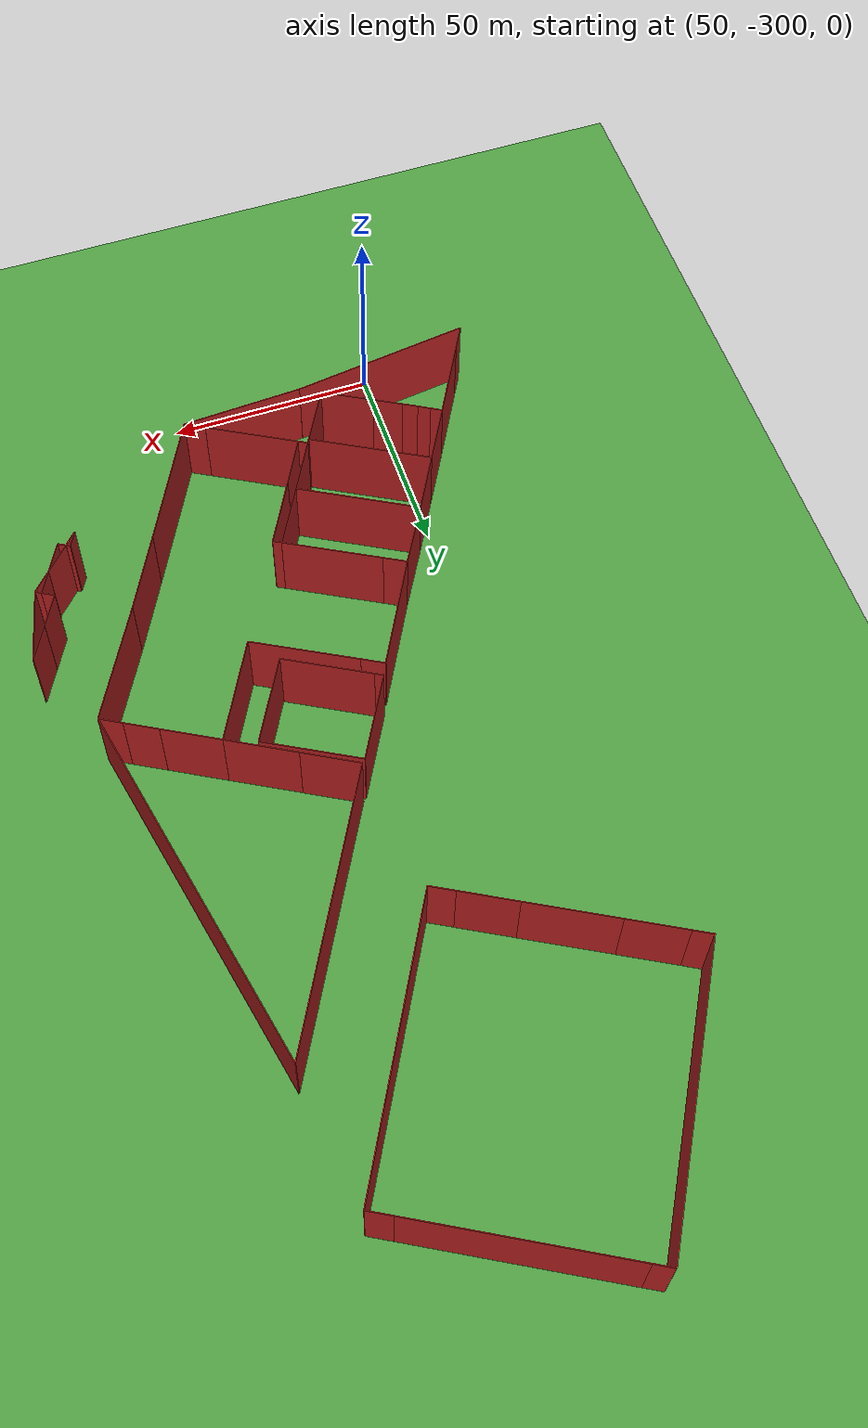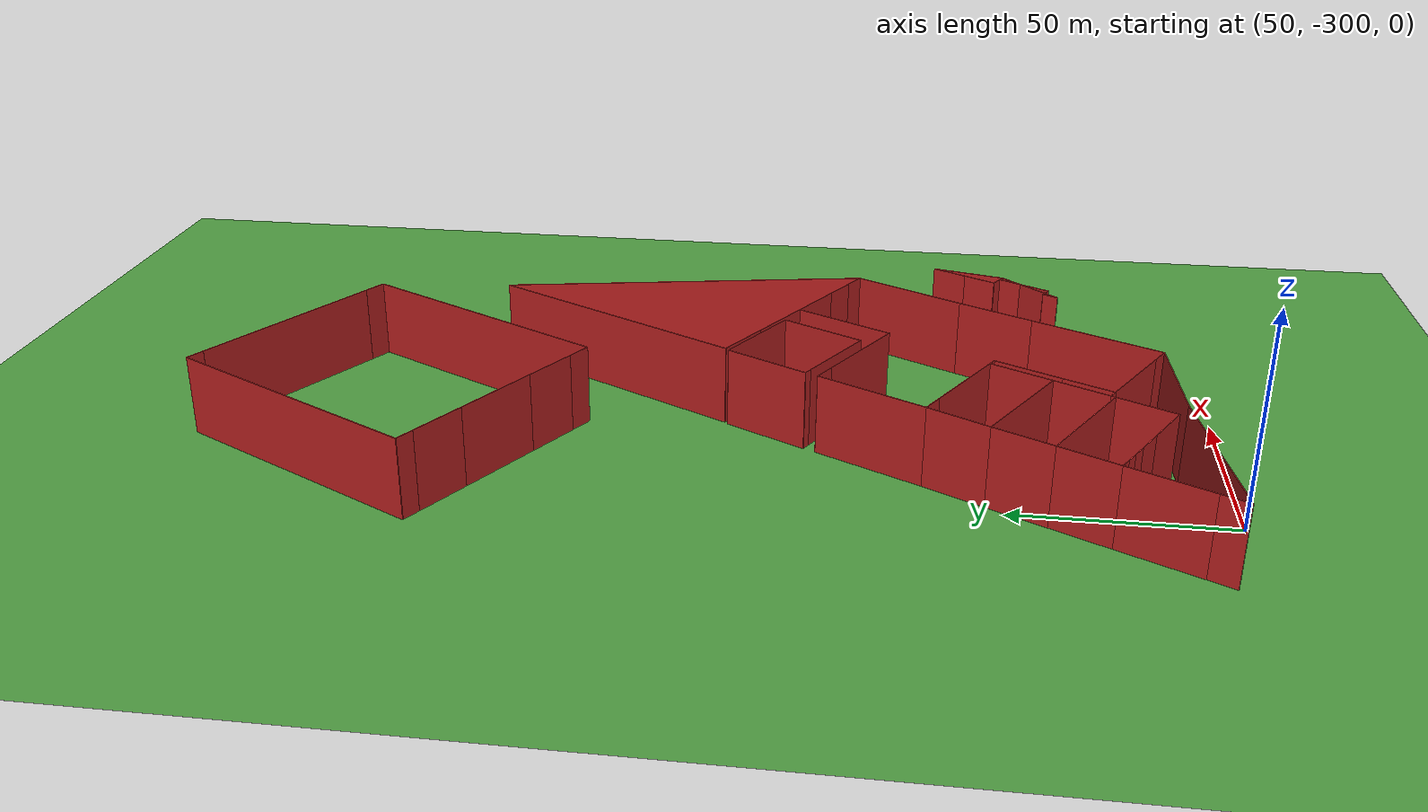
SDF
<sdf version="1.4">
 <world name="default">
  <model name="ground">
   <static>true</static>
   <link name="link">
    <collision name="collision">
     <geometry><plane><size>10000 10000</size><normal>0 0 1</normal></plane></geometry>
     <surface><friction><ode><mu>100</mu><mu2>50</mu2></ode></friction></surface>
    </collision>
    <visual name="visual">
     <pose>0 0 -1 0 0 0</pose>
     <geometry><plane><normal>0 0 1</normal><size>10000 10000</size></plane></geometry>
     <material>
      <script><uri>file://media/materials/scripts/gazebo.material</uri><name>Gazebo/Grass</name></script>
     </material>
    </visual>
   </link>
  </model>
  <include><uri>model://sun</uri></include>
  <model name="office_building_266170738">
   <static>true</static>
   <pose>66.4010743435 -264.246206797 0.0 0 0 0</pose>
   <link name="office_building_266170738_0">
    <collision name="office_building_266170738_0">
     <geometry><box><size>30.0400742676 0.2 20.0</size></box></geometry>
    </collision>
    <visual name="office_building_266170738_0">
     <geometry><box><size>30.0400742676 0.2 20.0</size></box></geometry>
     <material>
      <script><uri>file://media/materials/scripts/gazebo.material</uri><name>Gazebo/Red</name></script>
     </material>
    </visual>
    <pose>-6.89030761443 -2.08200783372 9.0 0 0 -0.50446187228</pose>
   </link>
   <link name="office_building_266170738_1">
    <collision name="office_building_266170738_1">
     <geometry><box><size>14.9034670989 0.2 20.0</size></box></geometry>
    </collision>
    <visual name="office_building_266170738_1">
     <geometry><box><size>14.9034670989 0.2 20.0</size></box></geometry>
     <material>
      <script><uri>file://media/materials/scripts/gazebo.material</uri><name>Gazebo/Red</name></script>
     </material>
    </visual>
    <pose>-16.4146371384 11.6884564895 9.0 0 0 -2.07879318795</pose>
   </link>
   <link name="office_building_266170738_2">
    <collision name="office_building_266170738_2">
     <geometry><box><size>30.0441394522 0.2 20.0</size></box></geometry>
    </collision>
    <visual name="office_building_266170738_2">
     <geometry><box><size>30.0441394522 0.2 20.0</size></box></geometry>
     <material>
      <script><uri>file://media/materials/scripts/gazebo.material</uri><name>Gazebo/Red</name></script>
     </material>
    </visual>
    <pose>0.359144037494 10.9352317337 9.0 0 0 2.63688402281</pose>
   </link>
   <link name="office_building_266170738_3">
    <collision name="office_building_266170738_3">
     <geometry><box><size>13.7774020259 0.2 20.0</size></box></geometry>
    </collision>
    <visual name="office_building_266170738_3">
     <geometry><box><size>13.7774020259 0.2 20.0</size></box></geometry>
     <material>
      <script><uri>file://media/materials/scripts/gazebo.material</uri><name>Gazebo/Red</name></script>
     </material>
    </visual>
    <pose>10.1558830823 -2.34671775955 9.0 0 0 1.06255809713</pose>
   </link>
   <link name="office_building_266170738_4">
    <collision name="office_building_266170738_4">
     <geometry><box><size>1.11866650273 0.2 20.0</size></box></geometry>
    </collision>
    <visual name="office_building_266170738_4">
     <geometry><box><size>1.11866650273 0.2 20.0</size></box></geometry>
     <material>
      <script><uri>file://media/materials/scripts/gazebo.material</uri><name>Gazebo/Red</name></script>
     </material>
    </visual>
    <pose>6.53116357694 -8.85322389999 9.0 0 0 1.06211559722</pose>
   </link>
  </model>
  <model name="office_building_266170551">
   <static>true</static>
   <pose>67.1027754447 -244.520684622 0.0 0 0 0</pose>
   <link name="office_building_266170551_0">
    <collision name="office_building_266170551_0">
     <geometry><box><size>15.6832904899 0.2 20.0</size></box></geometry>
    </collision>
    <visual name="office_building_266170551_0">
     <geometry><box><size>15.6832904899 0.2 20.0</size></box></geometry>
     <material>
      <script><uri>file://media/materials/scripts/gazebo.material</uri><name>Gazebo/Red</name></script>
     </material>
    </visual>
    <pose>-9.56664492653 5.26234065938 9.0 0 0 -2.09500461992</pose>
   </link>
   <link name="office_building_266170551_1">
    <collision name="office_building_266170551_1">
     <geometry><box><size>5.67026094312 0.2 20.0</size></box></geometry>
    </collision>
    <visual name="office_building_266170551_1">
     <geometry><box><size>5.67026094312 0.2 20.0</size></box></geometry>
     <material>
      <script><uri>file://media/materials/scripts/gazebo.material</uri><name>Gazebo/Red</name></script>
     </material>
    </visual>
    <pose>-3.15643398435 10.6866461992 9.0 0 0 2.63952826497</pose>
   </link>
   <link name="office_building_266170551_2">
    <collision name="office_building_266170551_2">
     <geometry><box><size>24.1262364347 0.2 20.0</size></box></geometry>
    </collision>
    <visual name="office_building_266170551_2">
     <geometry><box><size>24.1262364347 0.2 20.0</size></box></geometry>
     <material>
      <script><uri>file://media/materials/scripts/gazebo.material</uri><name>Gazebo/Red</name></script>
     </material>
    </visual>
    <pose>9.90920199022 3.5279497821 9.0 0 0 2.64055687061</pose>
   </link>
   <link name="office_building_266170551_3">
    <collision name="office_building_266170551_3">
     <geometry><box><size>15.7840206942 0.2 20.0</size></box></geometry>
    </collision>
    <visual name="office_building_266170551_3">
     <geometry><box><size>15.7840206942 0.2 20.0</size></box></geometry>
     <material>
      <script><uri>file://media/materials/scripts/gazebo.material</uri><name>Gazebo/Red</name></script>
     </material>
    </visual>
    <pose>16.6480400773 -9.16031394045 9.0 0 0 1.06241467798</pose>
   </link>
   <link name="office_building_266170551_4">
    <collision name="office_building_266170551_4">
     <geometry><box><size>30.0441394522 0.2 20.0</size></box></geometry>
    </collision>
    <visual name="office_building_266170551_4">
     <geometry><box><size>30.0441394522 0.2 20.0</size></box></geometry>
     <material>
      <script><uri>file://media/materials/scripts/gazebo.material</uri><name>Gazebo/Red</name></script>
     </material>
    </visual>
    <pose>-0.342557063685 -8.79029044149 9.0 0 0 -0.504708630776</pose>
   </link>
  </model>
  <model name="office_building_266170657">
   <static>true</static>
   <pose>50.92613358 -272.684727492 0.0 0 0 0</pose>
   <link name="office_building_266170657_0">
    <collision name="office_building_266170657_0">
     <geometry><box><size>30.0400742676 0.2 20.0</size></box></geometry>
    </collision>
    <visual name="office_building_266170657_0">
     <geometry><box><size>30.0400742676 0.2 20.0</size></box></geometry>
     <material>
      <script><uri>file://media/materials/scripts/gazebo.material</uri><name>Gazebo/Red</name></script>
     </material>
    </visual>
    <pose>8.58463314908 6.35651286121 9.0 0 0 2.63713078131</pose>
   </link>
   <link name="office_building_266170657_1">
    <collision name="office_building_266170657_1">
     <geometry><box><size>14.5461650015 0.2 20.0</size></box></geometry>
    </collision>
    <visual name="office_building_266170657_1">
     <geometry><box><size>14.5461650015 0.2 20.0</size></box></geometry>
     <material>
      <script><uri>file://media/materials/scripts/gazebo.material</uri><name>Gazebo/Red</name></script>
     </material>
    </visual>
    <pose>18.1812572693 -7.24970655334 9.0 0 0 1.06049946937</pose>
   </link>
   <link name="office_building_266170657_2">
    <collision name="office_building_266170657_2">
     <geometry><box><size>13.0219665817 0.2 20.0</size></box></geometry>
    </collision>
    <visual name="office_building_266170657_2">
     <geometry><box><size>13.0219665817 0.2 20.0</size></box></geometry>
     <material>
      <script><uri>file://media/materials/scripts/gazebo.material</uri><name>Gazebo/Red</name></script>
     </material>
    </visual>
    <pose>8.91884037357 -10.4674510284 9.0 0 0 -0.501262680575</pose>
   </link>
   <link name="office_building_266170657_3">
    <collision name="office_building_266170657_3">
     <geometry><box><size>7.18447112879 0.2 20.0</size></box></geometry>
    </collision>
    <visual name="office_building_266170657_3">
     <geometry><box><size>7.18447112879 0.2 20.0</size></box></geometry>
     <material>
      <script><uri>file://media/materials/scripts/gazebo.material</uri><name>Gazebo/Red</name></script>
     </material>
    </visual>
    <pose>0.0564200070253 -5.61642014537 9.0 0 0 -0.500024542551</pose>
   </link>
   <link name="office_building_266170657_4">
    <collision name="office_building_266170657_4">
     <geometry><box><size>3.84355332419 0.2 20.0</size></box></geometry>
    </collision>
    <visual name="office_building_266170657_4">
     <geometry><box><size>3.84355332419 0.2 20.0</size></box></geometry>
     <material>
      <script><uri>file://media/materials/scripts/gazebo.material</uri><name>Gazebo/Red</name></script>
     </material>
    </visual>
    <pose>-4.77509926966 -2.9592954851 9.0 0 0 -0.508015779235</pose>
   </link>
   <link name="office_building_266170657_5">
    <collision name="office_building_266170657_5">
     <geometry><box><size>3.18955566037 0.2 20.0</size></box></geometry>
    </collision>
    <visual name="office_building_266170657_5">
     <geometry><box><size>3.18955566037 0.2 20.0</size></box></geometry>
     <material>
      <script><uri>file://media/materials/scripts/gazebo.material</uri><name>Gazebo/Red</name></script>
     </material>
    </visual>
    <pose>-7.83858370252 -1.23279115404 9.0 0 0 -0.519460394717</pose>
   </link>
   <link name="office_building_266170657_6">
    <collision name="office_building_266170657_6">
     <geometry><box><size>2.82183385922 0.2 20.0</size></box></geometry>
    </collision>
    <visual name="office_building_266170657_6">
     <geometry><box><size>2.82183385922 0.2 20.0</size></box></geometry>
     <material>
      <script><uri>file://media/materials/scripts/gazebo.material</uri><name>Gazebo/Red</name></script>
     </material>
    </visual>
    <pose>-10.4461599922 0.262111773582 9.0 0 0 -0.5217811948</pose>
   </link>
   <link name="office_building_266170657_7">
    <collision name="office_building_266170657_7">
     <geometry><box><size>14.5094722559 0.2 20.0</size></box></geometry>
    </collision>
    <visual name="office_building_266170657_7">
     <geometry><box><size>14.5094722559 0.2 20.0</size></box></geometry>
     <material>
      <script><uri>file://media/materials/scripts/gazebo.material</uri><name>Gazebo/Red</name></script>
     </material>
    </visual>
    <pose>-8.11687931307 7.29079597405 9.0 0 0 -2.08251137731</pose>
   </link>
  </model>
  <model name="Paley Center for Media">
   <static>true</static>
   <pose>146.025192979 -243.515815815 0.0 0 0 0</pose>
   <link name="Paley Center for Media_0">
    <collision name="Paley Center for Media_0">
     <geometry><box><size>18.3148447589 0.2 20.0</size></box></geometry>
    </collision>
    <visual name="Paley Center for Media_0">
     <geometry><box><size>18.3148447589 0.2 20.0</size></box></geometry>
     <material>
      <script><uri>file://media/materials/scripts/gazebo.material</uri><name>Gazebo/Red</name></script>
     </material>
    </visual>
    <pose>1.64009938723 0.828257748382 9.0 0 0 1.31361485393</pose>
   </link>
   <link name="Paley Center for Media_1">
    <collision name="Paley Center for Media_1">
     <geometry><box><size>1.493142071 0.2 20.0</size></box></geometry>
    </collision>
    <visual name="Paley Center for Media_1">
     <geometry><box><size>1.493142071 0.2 20.0</size></box></geometry>
     <material>
      <script><uri>file://media/materials/scripts/gazebo.material</uri><name>Gazebo/Red</name></script>
     </material>
    </visual>
    <pose>-1.33964631139 -7.66163075644 9.0 0 0 -0.512909089973</pose>
   </link>
   <link name="Paley Center for Media_2">
    <collision name="Paley Center for Media_2">
     <geometry><box><size>3.14388824643 0.2 20.0</size></box></geometry>
    </collision>
    <visual name="Paley Center for Media_2">
     <geometry><box><size>3.14388824643 0.2 20.0</size></box></geometry>
     <material>
      <script><uri>file://media/materials/scripts/gazebo.material</uri><name>Gazebo/Red</name></script>
     </material>
    </visual>
    <pose>-3.35787289206 -6.52046179748 9.0 0 0 -0.51542312408</pose>
   </link>
   <link name="Paley Center for Media_3">
    <collision name="Paley Center for Media_3">
     <geometry><box><size>8.5444416724 0.2 20.0</size></box></geometry>
    </collision>
    <visual name="Paley Center for Media_3">
     <geometry><box><size>8.5444416724 0.2 20.0</size></box></geometry>
     <material>
      <script><uri>file://media/materials/scripts/gazebo.material</uri><name>Gazebo/Red</name></script>
     </material>
    </visual>
    <pose>-2.6296960032 -2.02286840808 9.0 0 0 -2.08356084788</pose>
   </link>
   <link name="Paley Center for Media_4">
    <collision name="Paley Center for Media_4">
     <geometry><box><size>9.16689312553 0.2 20.0</size></box></geometry>
    </collision>
    <visual name="Paley Center for Media_4">
     <geometry><box><size>9.16689312553 0.2 20.0</size></box></geometry>
     <material>
      <script><uri>file://media/materials/scripts/gazebo.material</uri><name>Gazebo/Red</name></script>
     </material>
    </visual>
    <pose>1.71777350483 5.69220404909 9.0 0 0 -2.08430824888</pose>
   </link>
  </model>
  <model name="office_building_162755456">
   <static>true</static>
   <pose>139.648622161 -257.085949357 0.0 0 0 0</pose>
   <link name="office_building_162755456_0">
    <collision name="office_building_162755456_0">
     <geometry><box><size>13.8887949601 0.2 20.0</size></box></geometry>
    </collision>
    <visual name="office_building_162755456_0">
     <geometry><box><size>13.8887949601 0.2 20.0</size></box></geometry>
     <material>
      <script><uri>file://media/materials/scripts/gazebo.material</uri><name>Gazebo/Red</name></script>
     </material>
    </visual>
    <pose>0.995187075462 0.214807525104 9.0 0 0 1.06060857953</pose>
   </link>
   <link name="office_building_162755456_1">
    <collision name="office_building_162755456_1">
     <geometry><box><size>3.04301989531 0.2 20.0</size></box></geometry>
    </collision>
    <visual name="office_building_162755456_1">
     <geometry><box><size>3.04301989531 0.2 20.0</size></box></geometry>
     <material>
      <script><uri>file://media/materials/scripts/gazebo.material</uri><name>Gazebo/Red</name></script>
     </material>
    </visual>
    <pose>-3.72485324869 -5.10411445699 9.0 0 0 -0.508765121501</pose>
   </link>
   <link name="office_building_162755456_2">
    <collision name="office_building_162755456_2">
     <geometry><box><size>4.02795398232 0.2 20.0</size></box></geometry>
    </collision>
    <visual name="office_building_162755456_2">
     <geometry><box><size>4.02795398232 0.2 20.0</size></box></geometry>
     <material>
      <script><uri>file://media/materials/scripts/gazebo.material</uri><name>Gazebo/Red</name></script>
     </material>
    </visual>
    <pose>-6.03211158247 -6.12331031029 9.0 0 0 1.0634825448</pose>
   </link>
   <link name="office_building_162755456_3">
    <collision name="office_building_162755456_3">
     <geometry><box><size>18.4794647464 0.2 20.0</size></box></geometry>
    </collision>
    <visual name="office_building_162755456_3">
     <geometry><box><size>18.4794647464 0.2 20.0</size></box></geometry>
     <material>
      <script><uri>file://media/materials/scripts/gazebo.material</uri><name>Gazebo/Red</name></script>
     </material>
    </visual>
    <pose>-0.661568487051 -1.17074123951 9.0 0 0 -2.32834236971</pose>
   </link>
   <link name="office_building_162755456_4">
    <collision name="office_building_162755456_4">
     <geometry><box><size>1.493142071 0.2 20.0</size></box></geometry>
    </collision>
    <visual name="office_building_162755456_4">
     <geometry><box><size>1.493142071 0.2 20.0</size></box></geometry>
     <material>
      <script><uri>file://media/materials/scripts/gazebo.material</uri><name>Gazebo/Red</name></script>
     </material>
    </visual>
    <pose>5.036924507 5.90850278518 9.0 0 0 -0.512909089973</pose>
   </link>
  </model>
  <model name="Radio City Music Hall">
   <static>true</static>
   <pose>66.8654919596 -114.337805994 0.0 0 0 0</pose>
   <link name="Radio City Music Hall_0">
    <collision name="Radio City Music Hall_0">
     <geometry><box><size>70.4279726523 0.2 20.0</size></box></geometry>
    </collision>
    <visual name="Radio City Music Hall_0">
     <geometry><box><size>70.4279726523 0.2 20.0</size></box></geometry>
     <material>
      <script><uri>file://media/materials/scripts/gazebo.material</uri><name>Gazebo/Red</name></script>
     </material>
    </visual>
    <pose>-19.2956568865 21.6352152445 9.0 0 0 -2.07753266714</pose>
   </link>
   <link name="Radio City Music Hall_1">
    <collision name="Radio City Music Hall_1">
     <geometry><box><size>4.61645518628 0.2 20.0</size></box></geometry>
    </collision>
    <visual name="Radio City Music Hall_1">
     <geometry><box><size>4.61645518628 0.2 20.0</size></box></geometry>
     <material>
      <script><uri>file://media/materials/scripts/gazebo.material</uri><name>Gazebo/Red</name></script>
     </material>
    </visual>
    <pose>-0.187185336111 51.303793419 9.0 0 0 2.63488995103</pose>
   </link>
   <link name="Radio City Music Hall_2">
    <collision name="Radio City Music Hall_2">
     <geometry><box><size>50.4464401351 0.2 20.0</size></box></geometry>
    </collision>
    <visual name="Radio City Music Hall_2">
     <geometry><box><size>50.4464401351 0.2 20.0</size></box></geometry>
     <material>
      <script><uri>file://media/materials/scripts/gazebo.material</uri><name>Gazebo/Red</name></script>
     </material>
    </visual>
    <pose>23.886652316 37.9459885908 9.0 0 0 2.63503147942</pose>
   </link>
   <link name="Radio City Music Hall_3">
    <collision name="Radio City Music Hall_3">
     <geometry><box><size>5.91467925501 0.2 20.0</size></box></geometry>
    </collision>
    <visual name="Radio City Music Hall_3">
     <geometry><box><size>5.91467925501 0.2 20.0</size></box></geometry>
     <material>
      <script><uri>file://media/materials/scripts/gazebo.material</uri><name>Gazebo/Red</name></script>
     </material>
    </visual>
    <pose>48.5275920394 24.2723636546 9.0 0 0 2.63457742252</pose>
   </link>
   <link name="Radio City Music Hall_4">
    <collision name="Radio City Music Hall_4">
     <geometry><box><size>70.2444945641 0.2 20.0</size></box></geometry>
    </collision>
    <visual name="Radio City Music Hall_4">
     <geometry><box><size>70.2444945641 0.2 20.0</size></box></geometry>
     <material>
      <script><uri>file://media/materials/scripts/gazebo.material</uri><name>Gazebo/Red</name></script>
     </material>
    </visual>
    <pose>34.0672170639 -7.87221782759 9.0 0 0 1.0640624675</pose>
   </link>
   <link name="Radio City Music Hall_5">
    <collision name="Radio City Music Hall_5">
     <geometry><box><size>6.21909529223 0.2 20.0</size></box></geometry>
    </collision>
    <visual name="Radio City Music Hall_5">
     <geometry><box><size>6.21909529223 0.2 20.0</size></box></geometry>
     <material>
      <script><uri>file://media/materials/scripts/gazebo.material</uri><name>Gazebo/Red</name></script>
     </material>
    </visual>
    <pose>14.2972361308 -37.0816567088 9.0 0 0 -0.503062513433</pose>
   </link>
   <link name="Radio City Music Hall_6">
    <collision name="Radio City Music Hall_6">
     <geometry><box><size>13.8801247236 0.2 20.0</size></box></geometry>
    </collision>
    <visual name="Radio City Music Hall_6">
     <geometry><box><size>13.8801247236 0.2 20.0</size></box></geometry>
     <material>
      <script><uri>file://media/materials/scripts/gazebo.material</uri><name>Gazebo/Red</name></script>
     </material>
    </visual>
    <pose>5.49606050344 -32.2304767727 9.0 0 0 -0.504074835531</pose>
   </link>
   <link name="Radio City Music Hall_7">
    <collision name="Radio City Music Hall_7">
     <geometry><box><size>21.8318023266 0.2 20.0</size></box></geometry>
    </collision>
    <visual name="Radio City Music Hall_7">
     <geometry><box><size>21.8318023266 0.2 20.0</size></box></geometry>
     <material>
      <script><uri>file://media/materials/scripts/gazebo.material</uri><name>Gazebo/Red</name></script>
     </material>
    </visual>
    <pose>-10.1436706467 -23.6145506105 9.0 0 0 -0.503189892284</pose>
   </link>
   <link name="Radio City Music Hall_8">
    <collision name="Radio City Music Hall_8">
     <geometry><box><size>14.2852710823 0.2 20.0</size></box></geometry>
    </collision>
    <visual name="Radio City Music Hall_8">
     <geometry><box><size>14.2852710823 0.2 20.0</size></box></geometry>
     <material>
      <script><uri>file://media/materials/scripts/gazebo.material</uri><name>Gazebo/Red</name></script>
     </material>
    </visual>
    <pose>-25.9613075139 -14.9017399222 9.0 0 0 -0.503921694223</pose>
   </link>
   <link name="Radio City Music Hall_9">
    <collision name="Radio City Music Hall_9">
     <geometry><box><size>4.76175828055 0.2 20.0</size></box></geometry>
    </collision>
    <visual name="Radio City Music Hall_9">
     <geometry><box><size>4.76175828055 0.2 20.0</size></box></geometry>
     <material>
      <script><uri>file://media/materials/scripts/gazebo.material</uri><name>Gazebo/Red</name></script>
     </material>
    </visual>
    <pose>-34.3010067045 -10.3031804415 9.0 0 0 -0.50392279344</pose>
   </link>
  </model>
  <model name="office_building_266170649">
   <static>true</static>
   <pose>87.1054794526 -202.761375484 0.0 0 0 0</pose>
   <link name="office_building_266170649_0">
    <collision name="office_building_266170649_0">
     <geometry><box><size>21.7234035409 0.2 20.0</size></box></geometry>
    </collision>
    <visual name="office_building_266170649_0">
     <geometry><box><size>21.7234035409 0.2 20.0</size></box></geometry>
     <material>
      <script><uri>file://media/materials/scripts/gazebo.material</uri><name>Gazebo/Red</name></script>
     </material>
    </visual>
    <pose>-5.49136908766 7.17018663954 9.0 0 0 -2.07917587891</pose>
   </link>
   <link name="office_building_266170649_1">
    <collision name="office_building_266170649_1">
     <geometry><box><size>23.8582984707 0.2 20.0</size></box></geometry>
    </collision>
    <visual name="office_building_266170649_1">
     <geometry><box><size>23.8582984707 0.2 20.0</size></box></geometry>
     <material>
      <script><uri>file://media/materials/scripts/gazebo.material</uri><name>Gazebo/Red</name></script>
     </material>
    </visual>
    <pose>10.237051981 10.8891374597 9.0 0 0 2.63681213482</pose>
   </link>
   <link name="office_building_266170649_2">
    <collision name="office_building_266170649_2">
     <geometry><box><size>21.7233567113 0.2 20.0</size></box></geometry>
    </collision>
    <visual name="office_building_266170649_2">
     <geometry><box><size>21.7233567113 0.2 20.0</size></box></geometry>
     <material>
      <script><uri>file://media/materials/scripts/gazebo.material</uri><name>Gazebo/Red</name></script>
     </material>
    </visual>
    <pose>15.3913524779 -4.36803403835 9.0 0 0 1.06241713444</pose>
   </link>
   <link name="office_building_266170649_3">
    <collision name="office_building_266170649_3">
     <geometry><box><size>21.8521203959 0.2 20.0</size></box></geometry>
    </collision>
    <visual name="office_building_266170649_3">
     <geometry><box><size>21.8521203959 0.2 20.0</size></box></geometry>
     <material>
      <script><uri>file://media/materials/scripts/gazebo.material</uri><name>Gazebo/Red</name></script>
     </material>
    </visual>
    <pose>0.541384798005 -8.57125366436 9.0 0 0 -0.504866462576</pose>
   </link>
   <link name="office_building_266170649_4">
    <collision name="office_building_266170649_4">
     <geometry><box><size>2.00618706267 0.2 20.0</size></box></geometry>
    </collision>
    <visual name="office_building_266170649_4">
     <geometry><box><size>2.00618706267 0.2 20.0</size></box></geometry>
     <material>
      <script><uri>file://media/materials/scripts/gazebo.material</uri><name>Gazebo/Red</name></script>
     </material>
    </visual>
    <pose>-9.89998339021 -2.80215260119 9.0 0 0 -0.503821058987</pose>
   </link>
  </model>
  <model name="650 Fifth Avenue">
   <static>true</static>
   <pose>70.2919577729 -288.866446271 0.0 0 0 0</pose>
  </model>
  <model name="640 5th Avenue">
   <static>true</static>
   <pose>60.4027258762 -281.079379291 0.0 0 0 0</pose>
   <link name="640 5th Avenue_0">
    <collision name="640 5th Avenue_0">
     <geometry><box><size>44.191343842 0.2 20.0</size></box></geometry>
    </collision>
    <visual name="640 5th Avenue_0">
     <geometry><box><size>44.191343842 0.2 20.0</size></box></geometry>
     <material>
      <script><uri>file://media/materials/scripts/gazebo.material</uri><name>Gazebo/Red</name></script>
     </material>
    </visual>
    <pose>-12.0104930181 -10.7231811301 9.0 0 0 0.133276070222</pose>
   </link>
   <link name="640 5th Avenue_1">
    <collision name="640 5th Avenue_1">
     <geometry><box><size>6.52353049168 0.2 20.0</size></box></geometry>
    </collision>
    <visual name="640 5th Avenue_1">
     <geometry><box><size>6.52353049168 0.2 20.0</size></box></geometry>
     <material>
      <script><uri>file://media/materials/scripts/gazebo.material</uri><name>Gazebo/Red</name></script>
     </material>
    </visual>
    <pose>-32.3258028153 -10.808200533 9.0 0 0 -2.07802175435</pose>
   </link>
   <link name="640 5th Avenue_2">
    <collision name="640 5th Avenue_2">
     <geometry><box><size>19.797856114 0.2 20.0</size></box></geometry>
    </collision>
    <visual name="640 5th Avenue_2">
     <geometry><box><size>19.797856114 0.2 20.0</size></box></geometry>
     <material>
      <script><uri>file://media/materials/scripts/gazebo.material</uri><name>Gazebo/Red</name></script>
     </material>
    </visual>
    <pose>-25.9436550493 0.701447101454 9.0 0 0 -2.07678439752</pose>
   </link>
   <link name="640 5th Avenue_3">
    <collision name="640 5th Avenue_3">
     <geometry><box><size>2.82183385922 0.2 20.0</size></box></geometry>
    </collision>
    <visual name="640 5th Avenue_3">
     <geometry><box><size>2.82183385922 0.2 20.0</size></box></geometry>
     <material>
      <script><uri>file://media/materials/scripts/gazebo.material</uri><name>Gazebo/Red</name></script>
     </material>
    </visual>
    <pose>-19.9227522885 8.65676357216 9.0 0 0 2.61981145879</pose>
   </link>
   <link name="640 5th Avenue_4">
    <collision name="640 5th Avenue_4">
     <geometry><box><size>3.18955566037 0.2 20.0</size></box></geometry>
    </collision>
    <visual name="640 5th Avenue_4">
     <geometry><box><size>3.18955566037 0.2 20.0</size></box></geometry>
     <material>
      <script><uri>file://media/materials/scripts/gazebo.material</uri><name>Gazebo/Red</name></script>
     </material>
    </visual>
    <pose>-17.3151759987 7.16186064454 9.0 0 0 2.62213225887</pose>
   </link>
   <link name="640 5th Avenue_5">
    <collision name="640 5th Avenue_5">
     <geometry><box><size>3.84355332419 0.2 20.0</size></box></geometry>
    </collision>
    <visual name="640 5th Avenue_5">
     <geometry><box><size>3.84355332419 0.2 20.0</size></box></geometry>
     <material>
      <script><uri>file://media/materials/scripts/gazebo.material</uri><name>Gazebo/Red</name></script>
     </material>
    </visual>
    <pose>-14.2516915659 5.43535631348 9.0 0 0 2.63357687435</pose>
   </link>
   <link name="640 5th Avenue_6">
    <collision name="640 5th Avenue_6">
     <geometry><box><size>7.18447112879 0.2 20.0</size></box></geometry>
    </collision>
    <visual name="640 5th Avenue_6">
     <geometry><box><size>7.18447112879 0.2 20.0</size></box></geometry>
     <material>
      <script><uri>file://media/materials/scripts/gazebo.material</uri><name>Gazebo/Red</name></script>
     </material>
    </visual>
    <pose>-9.42017228918 2.77823165321 9.0 0 0 2.64156811104</pose>
   </link>
   <link name="640 5th Avenue_7">
    <collision name="640 5th Avenue_7">
     <geometry><box><size>13.0219665817 0.2 20.0</size></box></geometry>
    </collision>
    <visual name="640 5th Avenue_7">
     <geometry><box><size>13.0219665817 0.2 20.0</size></box></geometry>
     <material>
      <script><uri>file://media/materials/scripts/gazebo.material</uri><name>Gazebo/Red</name></script>
     </material>
    </visual>
    <pose>-0.557751922633 -2.07279922982 9.0 0 0 2.64032997302</pose>
   </link>
   <link name="640 5th Avenue_8">
    <collision name="640 5th Avenue_8">
     <geometry><box><size>14.5461650015 0.2 20.0</size></box></geometry>
    </collision>
    <visual name="640 5th Avenue_8">
     <geometry><box><size>14.5461650015 0.2 20.0</size></box></geometry>
     <material>
      <script><uri>file://media/materials/scripts/gazebo.material</uri><name>Gazebo/Red</name></script>
     </material>
    </visual>
    <pose>8.70466497309 1.14494524524 9.0 0 0 -2.08109318422</pose>
   </link>
   <link name="640 5th Avenue_9">
    <collision name="640 5th Avenue_9">
     <geometry><box><size>1.11866650273 0.2 20.0</size></box></geometry>
    </collision>
    <visual name="640 5th Avenue_9">
     <geometry><box><size>1.11866650273 0.2 20.0</size></box></geometry>
     <material>
      <script><uri>file://media/materials/scripts/gazebo.material</uri><name>Gazebo/Red</name></script>
     </material>
    </visual>
    <pose>12.5295120442 7.97994859353 9.0 0 0 -2.07947705637</pose>
   </link>
   <link name="640 5th Avenue_10">
    <collision name="640 5th Avenue_10">
     <geometry><box><size>2.41539180909 0.2 20.0</size></box></geometry>
    </collision>
    <visual name="640 5th Avenue_10">
     <geometry><box><size>2.41539180909 0.2 20.0</size></box></geometry>
     <material>
      <script><uri>file://media/materials/scripts/gazebo.material</uri><name>Gazebo/Red</name></script>
     </material>
    </visual>
    <pose>13.8582950031 7.88313910551 9.0 0 0 2.63561593967</pose>
   </link>
   <link name="640 5th Avenue_11">
    <collision name="640 5th Avenue_11">
     <geometry><box><size>22.850037516 0.2 20.0</size></box></geometry>
    </collision>
    <visual name="640 5th Avenue_11">
     <geometry><box><size>22.850037516 0.2 20.0</size></box></geometry>
     <material>
      <script><uri>file://media/materials/scripts/gazebo.material</uri><name>Gazebo/Red</name></script>
     </material>
    </visual>
    <pose>24.9057420302 1.75619930459 9.0 0 0 2.63518130501</pose>
   </link>
   <link name="640 5th Avenue_12">
    <collision name="640 5th Avenue_12">
     <geometry><box><size>5.22618116072 0.2 20.0</size></box></geometry>
    </collision>
    <visual name="640 5th Avenue_12">
     <geometry><box><size>5.22618116072 0.2 20.0</size></box></geometry>
     <material>
      <script><uri>file://media/materials/scripts/gazebo.material</uri><name>Gazebo/Red</name></script>
     </material>
    </visual>
    <pose>37.1819204307 -5.0529091295 9.0 0 0 2.63516646162</pose>
   </link>
   <link name="640 5th Avenue_13">
    <collision name="640 5th Avenue_13">
     <geometry><box><size>29.6141345496 0.2 20.0</size></box></geometry>
    </collision>
    <visual name="640 5th Avenue_13">
     <geometry><box><size>29.6141345496 0.2 20.0</size></box></geometry>
     <material>
      <script><uri>file://media/materials/scripts/gazebo.material</uri><name>Gazebo/Red</name></script>
     </material>
    </visual>
    <pose>24.6781285695 -7.05373453061 9.0 0 0 0.0495461089734</pose>
   </link>
  </model>
  <model name="75 Rockefeller Plaza">
   <static>true</static>
   <pose>97.1117111886 -239.938372698 0.0 0 0 0</pose>
   <link name="75 Rockefeller Plaza_0">
    <collision name="75 Rockefeller Plaza_0">
     <geometry><box><size>12.502239384 0.2 20.0</size></box></geometry>
    </collision>
    <visual name="75 Rockefeller Plaza_0">
     <geometry><box><size>12.502239384 0.2 20.0</size></box></geometry>
     <material>
      <script><uri>file://media/materials/scripts/gazebo.material</uri><name>Gazebo/Red</name></script>
     </material>
    </visual>
    <pose>-18.8311718526 -28.3389871391 9.0 0 0 -2.06464508761</pose>
   </link>
   <link name="75 Rockefeller Plaza_1">
    <collision name="75 Rockefeller Plaza_1">
     <geometry><box><size>17.0762196345 0.2 20.0</size></box></geometry>
    </collision>
    <visual name="75 Rockefeller Plaza_1">
     <geometry><box><size>17.0762196345 0.2 20.0</size></box></geometry>
     <material>
      <script><uri>file://media/materials/scripts/gazebo.material</uri><name>Gazebo/Red</name></script>
     </material>
    </visual>
    <pose>-11.7651926501 -15.3470544527 9.0 0 0 -2.07205746048</pose>
   </link>
   <link name="75 Rockefeller Plaza_2">
    <collision name="75 Rockefeller Plaza_2">
     <geometry><box><size>2.11418828104 0.2 20.0</size></box></geometry>
    </collision>
    <visual name="75 Rockefeller Plaza_2">
     <geometry><box><size>2.11418828104 0.2 20.0</size></box></geometry>
     <material>
      <script><uri>file://media/materials/scripts/gazebo.material</uri><name>Gazebo/Red</name></script>
     </material>
    </visual>
    <pose>-8.59085301047 -7.35400880625 9.0 0 0 -0.498405003866</pose>
   </link>
   <link name="75 Rockefeller Plaza_3">
    <collision name="75 Rockefeller Plaza_3">
     <geometry><box><size>24.1262364347 0.2 20.0</size></box></geometry>
    </collision>
    <visual name="75 Rockefeller Plaza_3">
     <geometry><box><size>24.1262364347 0.2 20.0</size></box></geometry>
     <material>
      <script><uri>file://media/materials/scripts/gazebo.material</uri><name>Gazebo/Red</name></script>
     </material>
    </visual>
    <pose>-20.0997337537 -1.05436214161 9.0 0 0 -0.501035782977</pose>
   </link>
   <link name="75 Rockefeller Plaza_4">
    <collision name="75 Rockefeller Plaza_4">
     <geometry><box><size>5.67026094312 0.2 20.0</size></box></geometry>
    </collision>
    <visual name="75 Rockefeller Plaza_4">
     <geometry><box><size>5.67026094312 0.2 20.0</size></box></geometry>
     <material>
      <script><uri>file://media/materials/scripts/gazebo.material</uri><name>Gazebo/Red</name></script>
     </material>
    </visual>
    <pose>-33.1653697282 6.10433427549 9.0 0 0 -0.502064388622</pose>
   </link>
   <link name="75 Rockefeller Plaza_5">
    <collision name="75 Rockefeller Plaza_5">
     <geometry><box><size>27.9563130754 0.2 20.0</size></box></geometry>
    </collision>
    <visual name="75 Rockefeller Plaza_5">
     <geometry><box><size>27.9563130754 0.2 20.0</size></box></geometry>
     <material>
      <script><uri>file://media/materials/scripts/gazebo.material</uri><name>Gazebo/Red</name></script>
     </material>
    </visual>
    <pose>-28.9348111634 19.7278524615 9.0 0 0 -2.0719643144</pose>
   </link>
   <link name="75 Rockefeller Plaza_6">
    <collision name="75 Rockefeller Plaza_6">
     <geometry><box><size>5.67025855425 0.2 20.0</size></box></geometry>
    </collision>
    <visual name="75 Rockefeller Plaza_6">
     <geometry><box><size>5.67025855425 0.2 20.0</size></box></geometry>
     <material>
      <script><uri>file://media/materials/scripts/gazebo.material</uri><name>Gazebo/Red</name></script>
     </material>
    </visual>
    <pose>-19.7337575738 30.6226301272 9.0 0 0 2.63952571457</pose>
   </link>
   <link name="75 Rockefeller Plaza_7">
    <collision name="75 Rockefeller Plaza_7">
     <geometry><box><size>26.0634124365 0.2 20.0</size></box></geometry>
    </collision>
    <visual name="75 Rockefeller Plaza_7">
     <geometry><box><size>26.0634124365 0.2 20.0</size></box></geometry>
     <material>
      <script><uri>file://media/materials/scripts/gazebo.material</uri><name>Gazebo/Red</name></script>
     </material>
    </visual>
    <pose>-5.81749019858 23.0006935531 9.0 0 0 2.64073285752</pose>
   </link>
   <link name="75 Rockefeller Plaza_8">
    <collision name="75 Rockefeller Plaza_8">
     <geometry><box><size>25.7645076208 0.2 20.0</size></box></geometry>
    </collision>
    <visual name="75 Rockefeller Plaza_8">
     <geometry><box><size>25.7645076208 0.2 20.0</size></box></geometry>
     <material>
      <script><uri>file://media/materials/scripts/gazebo.material</uri><name>Gazebo/Red</name></script>
     </material>
    </visual>
    <pose>11.801205681 28.0420308089 9.0 0 0 -2.07182200437</pose>
   </link>
   <link name="75 Rockefeller Plaza_9">
    <collision name="75 Rockefeller Plaza_9">
     <geometry><box><size>14.3690443524 0.2 20.0</size></box></geometry>
    </collision>
    <visual name="75 Rockefeller Plaza_9">
     <geometry><box><size>14.3690443524 0.2 20.0</size></box></geometry>
     <material>
      <script><uri>file://media/materials/scripts/gazebo.material</uri><name>Gazebo/Red</name></script>
     </material>
    </visual>
    <pose>24.2659295559 35.8457919188 9.0 0 0 2.63353421422</pose>
   </link>
   <link name="75 Rockefeller Plaza_10">
    <collision name="75 Rockefeller Plaza_10">
     <geometry><box><size>8.31472589455 0.2 20.0</size></box></geometry>
    </collision>
    <visual name="75 Rockefeller Plaza_10">
     <geometry><box><size>8.31472589455 0.2 20.0</size></box></geometry>
     <material>
      <script><uri>file://media/materials/scripts/gazebo.material</uri><name>Gazebo/Red</name></script>
     </material>
    </visual>
    <pose>34.1735514765 30.3251610205 9.0 0 0 2.63270540739</pose>
   </link>
   <link name="75 Rockefeller Plaza_11">
    <collision name="75 Rockefeller Plaza_11">
     <geometry><box><size>5.71125887201 0.2 20.0</size></box></geometry>
    </collision>
    <visual name="75 Rockefeller Plaza_11">
     <geometry><box><size>5.71125887201 0.2 20.0</size></box></geometry>
     <material>
      <script><uri>file://media/materials/scripts/gazebo.material</uri><name>Gazebo/Red</name></script>
     </material>
    </visual>
    <pose>40.2893704272 26.8931967819 9.0 0 0 2.62660234868</pose>
   </link>
   <link name="75 Rockefeller Plaza_12">
    <collision name="75 Rockefeller Plaza_12">
     <geometry><box><size>29.6682737886 0.2 20.0</size></box></geometry>
    </collision>
    <visual name="75 Rockefeller Plaza_12">
     <geometry><box><size>29.6682737886 0.2 20.0</size></box></geometry>
     <material>
      <script><uri>file://media/materials/scripts/gazebo.material</uri><name>Gazebo/Red</name></script>
     </material>
    </visual>
    <pose>35.4417087918 12.5917610437 9.0 0 0 1.0537363076</pose>
   </link>
   <link name="75 Rockefeller Plaza_13">
    <collision name="75 Rockefeller Plaza_13">
     <geometry><box><size>19.8464102254 0.2 20.0</size></box></geometry>
    </collision>
    <visual name="75 Rockefeller Plaza_13">
     <geometry><box><size>19.8464102254 0.2 20.0</size></box></geometry>
     <material>
      <script><uri>file://media/materials/scripts/gazebo.material</uri><name>Gazebo/Red</name></script>
     </material>
    </visual>
    <pose>23.3833095355 -9.02901059419 9.0 0 0 1.0744612356</pose>
   </link>
   <link name="75 Rockefeller Plaza_14">
    <collision name="75 Rockefeller Plaza_14">
     <geometry><box><size>33.6939819861 0.2 20.0</size></box></geometry>
    </collision>
    <visual name="75 Rockefeller Plaza_14">
     <geometry><box><size>33.6939819861 0.2 20.0</size></box></geometry>
     <material>
      <script><uri>file://media/materials/scripts/gazebo.material</uri><name>Gazebo/Red</name></script>
     </material>
    </visual>
    <pose>10.7079294981 -32.6081140428 9.0 0 0 1.07936557759</pose>
   </link>
   <link name="75 Rockefeller Plaza_15">
    <collision name="75 Rockefeller Plaza_15">
     <geometry><box><size>5.22618116072 0.2 20.0</size></box></geometry>
    </collision>
    <visual name="75 Rockefeller Plaza_15">
     <geometry><box><size>5.22618116072 0.2 20.0</size></box></geometry>
     <material>
      <script><uri>file://media/materials/scripts/gazebo.material</uri><name>Gazebo/Red</name></script>
     </material>
    </visual>
    <pose>0.472935118315 -46.1939157219 9.0 0 0 -0.506426191973</pose>
   </link>
   <link name="75 Rockefeller Plaza_16">
    <collision name="75 Rockefeller Plaza_16">
     <geometry><box><size>22.850037516 0.2 20.0</size></box></geometry>
    </collision>
    <visual name="75 Rockefeller Plaza_16">
     <geometry><box><size>22.850037516 0.2 20.0</size></box></geometry>
     <material>
      <script><uri>file://media/materials/scripts/gazebo.material</uri><name>Gazebo/Red</name></script>
     </material>
    </visual>
    <pose>-11.8032432822 -39.3848072878 9.0 0 0 -0.50641134858</pose>
   </link>
  </model>
  <model name="1290 Avenue of the Americas">
   <static>true</static>
   <pose>114.377597739 -190.180979899 0.0 0 0 0</pose>
   <link name="1290 Avenue of the Americas_0">
    <collision name="1290 Avenue of the Americas_0">
     <geometry><box><size>14.0177035882 0.2 20.0</size></box></geometry>
    </collision>
    <visual name="1290 Avenue of the Americas_0">
     <geometry><box><size>14.0177035882 0.2 20.0</size></box></geometry>
     <material>
      <script><uri>file://media/materials/scripts/gazebo.material</uri><name>Gazebo/Red</name></script>
     </material>
    </visual>
    <pose>-20.4710709128 1.41232830759 9.0 0 0 2.63126292912</pose>
   </link>
   <link name="1290 Avenue of the Americas_1">
    <collision name="1290 Avenue of the Americas_1">
     <geometry><box><size>17.2627157865 0.2 20.0</size></box></geometry>
    </collision>
    <visual name="1290 Avenue of the Americas_1">
     <geometry><box><size>17.2627157865 0.2 20.0</size></box></geometry>
     <material>
      <script><uri>file://media/materials/scripts/gazebo.material</uri><name>Gazebo/Red</name></script>
     </material>
    </visual>
    <pose>-6.81613481285 -6.21385584265 9.0 0 0 2.63305589666</pose>
   </link>
   <link name="1290 Avenue of the Americas_2">
    <collision name="1290 Avenue of the Americas_2">
     <geometry><box><size>14.3690443524 0.2 20.0</size></box></geometry>
    </collision>
    <visual name="1290 Avenue of the Americas_2">
     <geometry><box><size>14.3690443524 0.2 20.0</size></box></geometry>
     <material>
      <script><uri>file://media/materials/scripts/gazebo.material</uri><name>Gazebo/Red</name></script>
     </material>
    </visual>
    <pose>7.00004300568 -13.9116008806 9.0 0 0 2.63353421422</pose>
   </link>
   <link name="1290 Avenue of the Americas_3">
    <collision name="1290 Avenue of the Americas_3">
     <geometry><box><size>8.31472589455 0.2 20.0</size></box></geometry>
    </collision>
    <visual name="1290 Avenue of the Americas_3">
     <geometry><box><size>8.31472589455 0.2 20.0</size></box></geometry>
     <material>
      <script><uri>file://media/materials/scripts/gazebo.material</uri><name>Gazebo/Red</name></script>
     </material>
    </visual>
    <pose>16.9076649263 -19.4322317789 9.0 0 0 2.63270540739</pose>
   </link>
   <link name="1290 Avenue of the Americas_4">
    <collision name="1290 Avenue of the Americas_4">
     <geometry><box><size>5.71125887201 0.2 20.0</size></box></geometry>
    </collision>
    <visual name="1290 Avenue of the Americas_4">
     <geometry><box><size>5.71125887201 0.2 20.0</size></box></geometry>
     <material>
      <script><uri>file://media/materials/scripts/gazebo.material</uri><name>Gazebo/Red</name></script>
     </material>
    </visual>
    <pose>23.0234838769 -22.8641960176 9.0 0 0 2.62660234868</pose>
   </link>
   <link name="1290 Avenue of the Americas_5">
    <collision name="1290 Avenue of the Americas_5">
     <geometry><box><size>91.9461592233 0.2 20.0</size></box></geometry>
    </collision>
    <visual name="1290 Avenue of the Americas_5">
     <geometry><box><size>91.9461592233 0.2 20.0</size></box></geometry>
     <material>
      <script><uri>file://media/materials/scripts/gazebo.material</uri><name>Gazebo/Red</name></script>
     </material>
    </visual>
    <pose>16.4953492024 20.8101806236 9.0 0 0 -1.37346023529</pose>
   </link>
   <link name="1290 Avenue of the Americas_6">
    <collision name="1290 Avenue of the Americas_6">
     <geometry><box><size>69.9171966121 0.2 20.0</size></box></geometry>
    </collision>
    <visual name="1290 Avenue of the Americas_6">
     <geometry><box><size>69.9171966121 0.2 20.0</size></box></geometry>
     <material>
      <script><uri>file://media/materials/scripts/gazebo.material</uri><name>Gazebo/Red</name></script>
     </material>
    </visual>
    <pose>-9.55245596986 35.3634685907 9.0 0 0 1.06183073791</pose>
   </link>
  </model>
  <model name="666 Fifth Avenue">
   <static>true</static>
   <pose>132.638057909 -264.96958171 0.0 0 0 0</pose>
   <link name="666 Fifth Avenue_0">
    <collision name="666 Fifth Avenue_0"><geometry><box><size>0.0 0.2 20.0</size></box></geometry></collision>
    <visual name="666 Fifth Avenue_0">
     <geometry><box><size>0.0 0.2 20.0</size></box></geometry>
     <material>
      <script><uri>file://media/materials/scripts/gazebo.material</uri><name>Gazebo/Red</name></script>
     </material>
    </visual>
    <pose>0.0 0.0 9.0 0 0 0.0</pose>
   </link>
  </model>
 </world>
</sdf>
